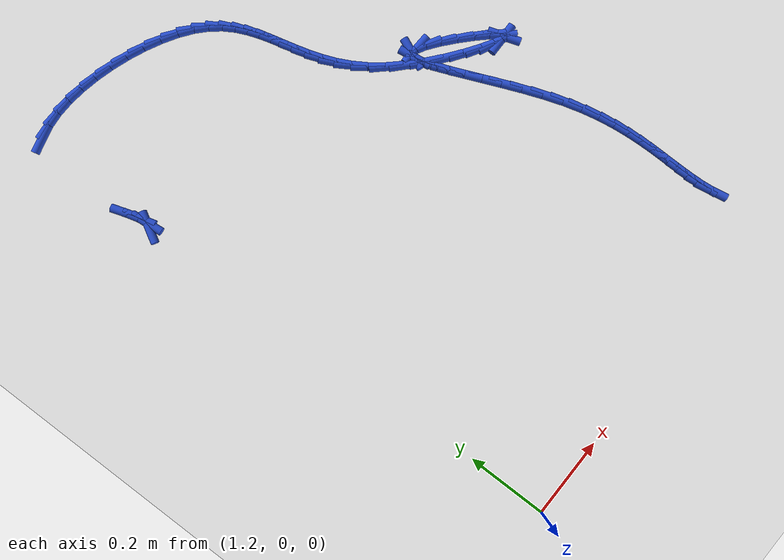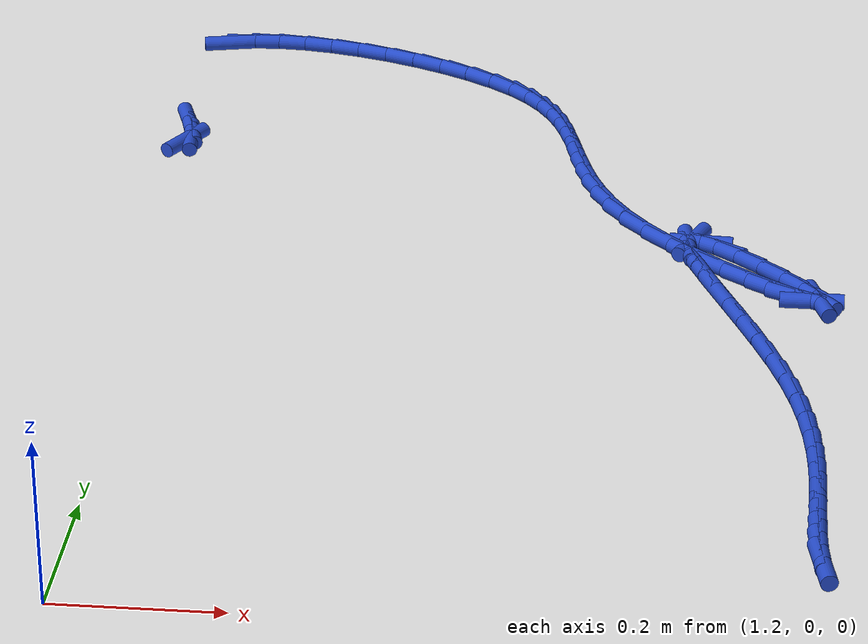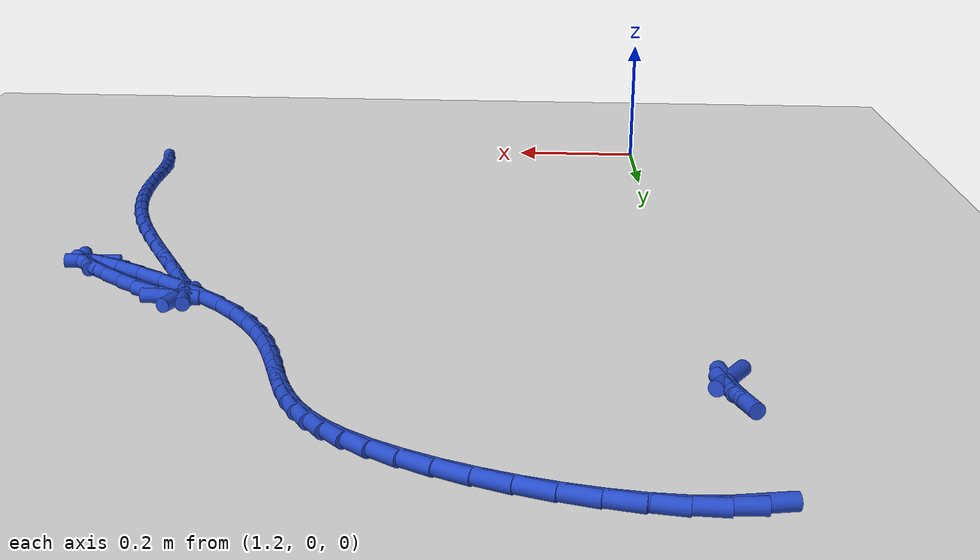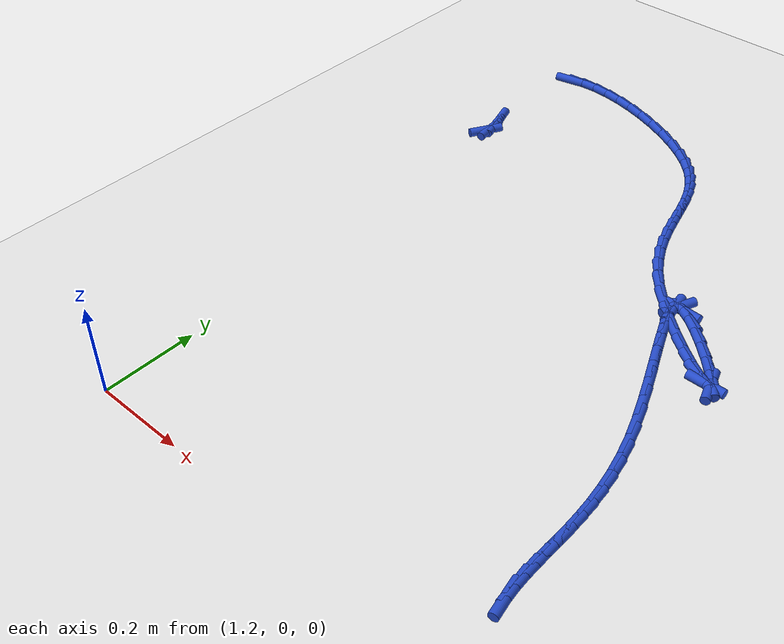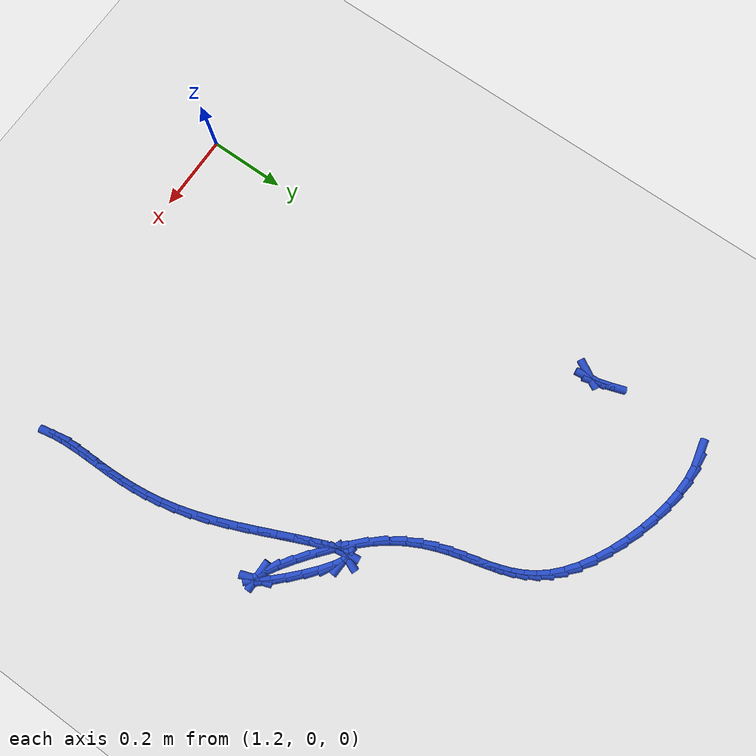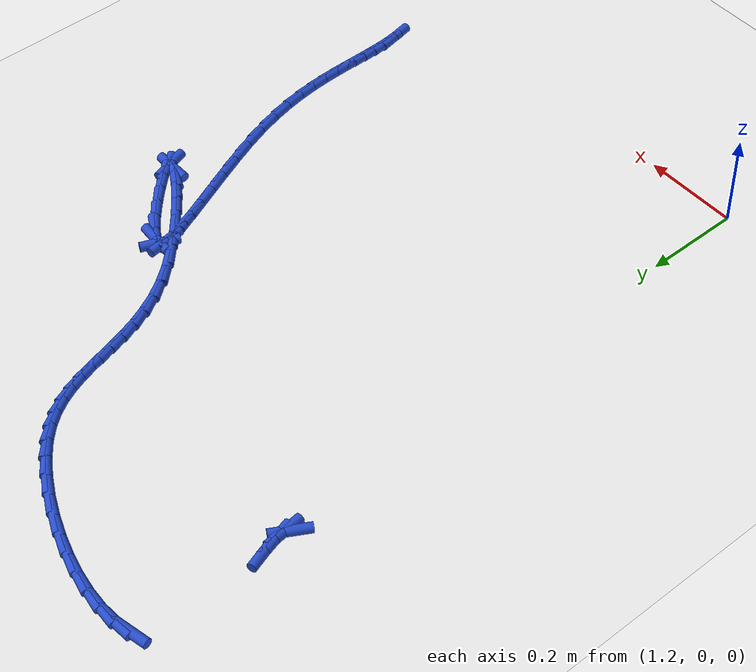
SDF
<sdf version="1.6">
 <world name="default">
  <model name="ground_plane">
   <static>1</static>
   <link name="link">
    <collision name="collision">
     <geometry><plane><normal>0 0 1</normal><size>100 100</size></plane></geometry>
     <surface><friction><ode><mu>100</mu><mu2>50</mu2></ode></friction></surface>
    </collision>
    <visual name="visual">
     <cast_shadows>0</cast_shadows>
     <geometry><plane><normal>0 0 1</normal><size>100 100</size></plane></geometry>
     <material>
      <script><uri>file://media/materials/scripts/gazebo.material</uri><name>Gazebo/WhiteGlow</name></script>
     </material>
    </visual>
   </link>
  </model>
  <model name="line">
   <link name="link_65">
    <pose>1.1656532051447064 1.1157899850554933 0.01 0 1.57 1.0488969806824193</pose>
    <collision name="collision">
     <geometry><cylinder><radius>0.01</radius><length>0.08</length></cylinder></geometry>
    </collision>
    <visual name="visual">
     <material>
      <script><name>Gazebo/Blue</name><uri>file://media/materials/scripts/gazebo.material</uri></script>
     </material>
     <geometry><cylinder><radius>0.01</radius><length>0.08</length></cylinder></geometry>
    </visual>
   </link>
   <link name="link_66">
    <pose>1.171268219180254 1.125553756651792 0.01 0 1.57 -1.4558059415035038</pose>
    <collision name="collision">
     <geometry><cylinder><radius>0.01</radius><length>0.08</length></cylinder></geometry>
    </collision>
    <visual name="visual">
     <material>
      <script><name>Gazebo/Blue</name><uri>file://media/materials/scripts/gazebo.material</uri></script>
     </material>
     <geometry><cylinder><radius>0.01</radius><length>0.08</length></cylinder></geometry>
    </visual>
   </link>
   <link name="link_67">
    <pose>1.1689261494113907 1.1458314325091925 0.01 0 1.57 -1.295163826412042</pose>
    <collision name="collision">
     <geometry><cylinder><radius>0.01</radius><length>0.08</length></cylinder></geometry>
    </collision>
    <visual name="visual">
     <material>
      <script><name>Gazebo/Blue</name><uri>file://media/materials/scripts/gazebo.material</uri></script>
     </material>
     <geometry><cylinder><radius>0.01</radius><length>0.08</length></cylinder></geometry>
    </visual>
   </link>
   <link name="link_68">
    <pose>1.1608627649033894 1.1743409229612525 0.01 0 1.57 -1.248244478907562</pose>
    <collision name="collision">
     <geometry><cylinder><radius>0.01</radius><length>0.08</length></cylinder></geometry>
    </collision>
    <visual name="visual">
     <material>
      <script><name>Gazebo/Blue</name><uri>file://media/materials/scripts/gazebo.material</uri></script>
     </material>
     <geometry><cylinder><radius>0.01</radius><length>0.08</length></cylinder></geometry>
    </visual>
   </link>
   <link name="link_77">
    <pose>1.1797636129354085 1.438411464489104 0.01 0 1.57 0.20988679104183577</pose>
    <collision name="collision">
     <geometry><cylinder><radius>0.01</radius><length>0.08</length></cylinder></geometry>
    </collision>
    <visual name="visual">
     <material>
      <script><name>Gazebo/Blue</name><uri>file://media/materials/scripts/gazebo.material</uri></script>
     </material>
     <geometry><cylinder><radius>0.01</radius><length>0.08</length></cylinder></geometry>
    </visual>
   </link>
   <link name="link_78">
    <pose>1.21087767289421 1.4450395089607755 0.01 0 1.57 0.05666317836701319</pose>
    <collision name="collision">
     <geometry><cylinder><radius>0.01</radius><length>0.08</length></cylinder></geometry>
    </collision>
    <visual name="visual">
     <material>
      <script><name>Gazebo/Blue</name><uri>file://media/materials/scripts/gazebo.material</uri></script>
     </material>
     <geometry><cylinder><radius>0.01</radius><length>0.08</length></cylinder></geometry>
    </visual>
   </link>
   <link name="link_79">
    <pose>1.246080596140976 1.4470363560401402 0.01 0 1.57 -0.059013898095474616</pose>
    <collision name="collision">
     <geometry><cylinder><radius>0.01</radius><length>0.08</length></cylinder></geometry>
    </collision>
    <visual name="visual">
     <material>
      <script><name>Gazebo/Blue</name><uri>file://media/materials/scripts/gazebo.material</uri></script>
     </material>
     <geometry><cylinder><radius>0.01</radius><length>0.08</length></cylinder></geometry>
    </visual>
   </link>
   <link name="link_80">
    <pose>1.2844394759921116 1.4447700174552396 0.01 0 1.57 -0.15067818776980507</pose>
    <collision name="collision">
     <geometry><cylinder><radius>0.01</radius><length>0.08</length></cylinder></geometry>
    </collision>
    <visual name="visual">
     <material>
      <script><name>Gazebo/Blue</name><uri>file://media/materials/scripts/gazebo.material</uri></script>
     </material>
     <geometry><cylinder><radius>0.01</radius><length>0.08</length></cylinder></geometry>
    </visual>
   </link>
   <link name="link_81">
    <pose>1.3250214057640235 1.4386085049341142 0.01 0 1.57 -0.22738578678764337</pose>
    <collision name="collision">
     <geometry><cylinder><radius>0.01</radius><length>0.08</length></cylinder></geometry>
    </collision>
    <visual name="visual">
     <material>
      <script><name>Gazebo/Blue</name><uri>file://media/materials/scripts/gazebo.material</uri></script>
     </material>
     <geometry><cylinder><radius>0.01</radius><length>0.08</length></cylinder></geometry>
    </visual>
   </link>
   <link name="link_82">
    <pose>1.3668934787731175 1.4289198302048054 0.01 0 1.57 -0.29534171705395845</pose>
    <collision name="collision">
     <geometry><cylinder><radius>0.01</radius><length>0.08</length></cylinder></geometry>
    </collision>
    <visual name="visual">
     <material>
      <script><name>Gazebo/Blue</name><uri>file://media/materials/scripts/gazebo.material</uri></script>
     </material>
     <geometry><cylinder><radius>0.01</radius><length>0.08</length></cylinder></geometry>
    </visual>
   </link>
   <link name="link_83">
    <pose>1.409122788335799 1.416072004995355 0.01 0 1.57 -0.3591673425585128</pose>
    <collision name="collision">
     <geometry><cylinder><radius>0.01</radius><length>0.08</length></cylinder></geometry>
    </collision>
    <visual name="visual">
     <material>
      <script><name>Gazebo/Blue</name><uri>file://media/materials/scripts/gazebo.material</uri></script>
     </material>
     <geometry><cylinder><radius>0.01</radius><length>0.08</length></cylinder></geometry>
    </visual>
   </link>
   <link name="link_84">
    <pose>1.4507764277684734 1.4004330410338028 0.01 0 1.57 -0.422787901797771</pose>
    <collision name="collision">
     <geometry><cylinder><radius>0.01</radius><length>0.08</length></cylinder></geometry>
    </collision>
    <visual name="visual">
     <material>
      <script><name>Gazebo/Blue</name><uri>file://media/materials/scripts/gazebo.material</uri></script>
     </material>
     <geometry><cylinder><radius>0.01</radius><length>0.08</length></cylinder></geometry>
    </visual>
   </link>
   <link name="link_85">
    <pose>1.4909214903875467 1.3823709500481913 0.01 0 1.57 -0.4901355269306434</pose>
    <collision name="collision">
     <geometry><cylinder><radius>0.01</radius><length>0.08</length></cylinder></geometry>
    </collision>
    <visual name="visual">
     <material>
      <script><name>Gazebo/Blue</name><uri>file://media/materials/scripts/gazebo.material</uri></script>
     </material>
     <geometry><cylinder><radius>0.01</radius><length>0.08</length></cylinder></geometry>
    </visual>
   </link>
   <link name="link_86">
    <pose>1.5286250695094252 1.362253743766562 0.01 0 1.57 -0.5658675238807724</pose>
    <collision name="collision">
     <geometry><cylinder><radius>0.01</radius><length>0.08</length></cylinder></geometry>
    </collision>
    <visual name="visual">
     <material>
      <script><name>Gazebo/Blue</name><uri>file://media/materials/scripts/gazebo.material</uri></script>
     </material>
     <geometry><cylinder><radius>0.01</radius><length>0.08</length></cylinder></geometry>
    </visual>
   </link>
   <link name="link_87">
    <pose>1.5629542584505138 1.3404494339169546 0.01 0 1.57 -0.6563155612507883</pose>
    <collision name="collision">
     <geometry><cylinder><radius>0.01</radius><length>0.08</length></cylinder></geometry>
    </collision>
    <visual name="visual">
     <material>
      <script><name>Gazebo/Blue</name><uri>file://media/materials/scripts/gazebo.material</uri></script>
     </material>
     <geometry><cylinder><radius>0.01</radius><length>0.08</length></cylinder></geometry>
    </visual>
   </link>
   <link name="link_88">
    <pose>1.5929761505272186 1.3173260322274114 0.01 0 1.57 -0.769297263653076</pose>
    <collision name="collision">
     <geometry><cylinder><radius>0.01</radius><length>0.08</length></cylinder></geometry>
    </collision>
    <visual name="visual">
     <material>
      <script><name>Gazebo/Blue</name><uri>file://media/materials/scripts/gazebo.material</uri></script>
     </material>
     <geometry><cylinder><radius>0.01</radius><length>0.08</length></cylinder></geometry>
    </visual>
   </link>
   <link name="link_89">
    <pose>1.6178594171813907 1.2932314216160885 0.01 0 1.57 -0.8956313855214411</pose>
    <collision name="collision">
     <geometry><cylinder><radius>0.01</radius><length>0.08</length></cylinder></geometry>
    </collision>
    <visual name="visual">
     <material>
      <script><name>Gazebo/Blue</name><uri>file://media/materials/scripts/gazebo.material</uri></script>
     </material>
     <geometry><cylinder><radius>0.01</radius><length>0.08</length></cylinder></geometry>
    </visual>
   </link>
   <link name="link_90">
    <pose>1.6378165850158215 1.2683066337525157 0.01 0 1.57 -1.0185782493417879</pose>
    <collision name="collision">
     <geometry><cylinder><radius>0.01</radius><length>0.08</length></cylinder></geometry>
    </collision>
    <visual name="visual">
     <material>
      <script><name>Gazebo/Blue</name><uri>file://media/materials/scripts/gazebo.material</uri></script>
     </material>
     <geometry><cylinder><radius>0.01</radius><length>0.08</length></cylinder></geometry>
    </visual>
   </link>
   <link name="link_91">
    <pose>1.6536738226688912 1.2425711004655342 0.01 0 1.57 -1.1276453673470754</pose>
    <collision name="collision">
     <geometry><cylinder><radius>0.01</radius><length>0.08</length></cylinder></geometry>
    </collision>
    <visual name="visual">
     <material>
      <script><name>Gazebo/Blue</name><uri>file://media/materials/scripts/gazebo.material</uri></script>
     </material>
     <geometry><cylinder><radius>0.01</radius><length>0.08</length></cylinder></geometry>
    </visual>
   </link>
   <link name="link_92">
    <pose>1.6662651460626112 1.216042698559419 0.01 0 1.57 -1.2145759397727756</pose>
    <collision name="collision">
     <geometry><cylinder><radius>0.01</radius><length>0.08</length></cylinder></geometry>
    </collision>
    <visual name="visual">
     <material>
      <script><name>Gazebo/Blue</name><uri>file://media/materials/scripts/gazebo.material</uri></script>
     </material>
     <geometry><cylinder><radius>0.01</radius><length>0.08</length></cylinder></geometry>
    </visual>
   </link>
   <link name="link_93">
    <pose>1.6764245711189933 1.1887393048384471 0.01 0 1.57 -1.2746580504739031</pose>
    <collision name="collision">
     <geometry><cylinder><radius>0.01</radius><length>0.08</length></cylinder></geometry>
    </collision>
    <visual name="visual">
     <material>
      <script><name>Gazebo/Blue</name><uri>file://media/materials/scripts/gazebo.material</uri></script>
     </material>
     <geometry><cylinder><radius>0.01</radius><length>0.08</length></cylinder></geometry>
    </visual>
   </link>
   <link name="link_94">
    <pose>1.6849861137600481 1.1606787961068947 0.01 0 1.57 -1.30638090434193</pose>
    <collision name="collision">
     <geometry><cylinder><radius>0.01</radius><length>0.08</length></cylinder></geometry>
    </collision>
    <visual name="visual">
     <material>
      <script><name>Gazebo/Blue</name><uri>file://media/materials/scripts/gazebo.material</uri></script>
     </material>
     <geometry><cylinder><radius>0.01</radius><length>0.08</length></cylinder></geometry>
    </visual>
   </link>
   <link name="link_95">
    <pose>1.6927837899077873 1.131879049169038 0.01 0 1.57 -1.3103353042638235</pose>
    <collision name="collision">
     <geometry><cylinder><radius>0.01</radius><length>0.08</length></cylinder></geometry>
    </collision>
    <visual name="visual">
     <material>
      <script><name>Gazebo/Blue</name><uri>file://media/materials/scripts/gazebo.material</uri></script>
     </material>
     <geometry><cylinder><radius>0.01</radius><length>0.08</length></cylinder></geometry>
    </visual>
   </link>
   <link name="link_96">
    <pose>1.7006516154842215 1.1023579408291526 0.01 0 1.57 -1.2883295885083759</pose>
    <collision name="collision">
     <geometry><cylinder><radius>0.01</radius><length>0.08</length></cylinder></geometry>
    </collision>
    <visual name="visual">
     <material>
      <script><name>Gazebo/Blue</name><uri>file://media/materials/scripts/gazebo.material</uri></script>
     </material>
     <geometry><cylinder><radius>0.01</radius><length>0.08</length></cylinder></geometry>
    </visual>
   </link>
   <link name="link_97">
    <pose>1.7094236064113624 1.0721333478915158 0.01 0 1.57 -1.2430374059604155</pose>
    <collision name="collision">
     <geometry><cylinder><radius>0.01</radius><length>0.08</length></cylinder></geometry>
    </collision>
    <visual name="visual">
     <material>
      <script><name>Gazebo/Blue</name><uri>file://media/materials/scripts/gazebo.material</uri></script>
     </material>
     <geometry><cylinder><radius>0.01</radius><length>0.08</length></cylinder></geometry>
    </visual>
   </link>
   <link name="link_98">
    <pose>1.719933778611221 1.0412231471604028 0.01 0 1.57 -1.1780334070711478</pose>
    <collision name="collision">
     <geometry><cylinder><radius>0.01</radius><length>0.08</length></cylinder></geometry>
    </collision>
    <visual name="visual">
     <material>
      <script><name>Gazebo/Blue</name><uri>file://media/materials/scripts/gazebo.material</uri></script>
     </material>
     <geometry><cylinder><radius>0.01</radius><length>0.08</length></cylinder></geometry>
    </visual>
   </link>
   <link name="link_99">
    <pose>1.7330161480058084 1.0096452154400903 0.01 0 1.57 -1.0978910053008004</pose>
    <collision name="collision">
     <geometry><cylinder><radius>0.01</radius><length>0.08</length></cylinder></geometry>
    </collision>
    <visual name="visual">
     <material>
      <script><name>Gazebo/Blue</name><uri>file://media/materials/scripts/gazebo.material</uri></script>
     </material>
     <geometry><cylinder><radius>0.01</radius><length>0.08</length></cylinder></geometry>
    </visual>
   </link>
   <link name="link_100">
    <pose>1.7495047305171356 0.9774174295348544 0.01 0 1.57 -1.0080180907600016</pose>
    <collision name="collision">
     <geometry><cylinder><radius>0.01</radius><length>0.08</length></cylinder></geometry>
    </collision>
    <visual name="visual">
     <material>
      <script><name>Gazebo/Blue</name><uri>file://media/materials/scripts/gazebo.material</uri></script>
     </material>
     <geometry><cylinder><radius>0.01</radius><length>0.08</length></cylinder></geometry>
    </visual>
   </link>
   <link name="link_101">
    <pose>1.7702335420672146 0.9445576662489715 0.01 0 1.57 -0.9140892967896581</pose>
    <collision name="collision">
     <geometry><cylinder><radius>0.01</radius><length>0.08</length></cylinder></geometry>
    </collision>
    <visual name="visual">
     <material>
      <script><name>Gazebo/Blue</name><uri>file://media/materials/scripts/gazebo.material</uri></script>
     </material>
     <geometry><cylinder><radius>0.01</radius><length>0.08</length></cylinder></geometry>
    </visual>
   </link>
   <link name="link_102">
    <pose>1.796036598578056 0.9110838023867185 0.01 0 1.57 -0.8260241469524479</pose>
    <collision name="collision">
     <geometry><cylinder><radius>0.01</radius><length>0.08</length></cylinder></geometry>
    </collision>
    <visual name="visual">
     <material>
      <script><name>Gazebo/Blue</name><uri>file://media/materials/scripts/gazebo.material</uri></script>
     </material>
     <geometry><cylinder><radius>0.01</radius><length>0.08</length></cylinder></geometry>
    </visual>
   </link>
   <link name="link_103">
    <pose>1.8272456750700297 0.877230028444431 0.01 0 1.57 -0.7594569255867708</pose>
    <collision name="collision">
     <geometry><cylinder><radius>0.01</radius><length>0.08</length></cylinder></geometry>
    </collision>
    <visual name="visual">
     <material>
      <script><name>Gazebo/Blue</name><uri>file://media/materials/scripts/gazebo.material</uri></script>
     </material>
     <geometry><cylinder><radius>0.01</radius><length>0.08</length></cylinder></geometry>
    </visual>
   </link>
   <link name="link_104">
    <pose>1.8621133113825188 0.8441260554489193 0.01 0 1.57 -0.7074998256193193</pose>
    <collision name="collision">
     <geometry><cylinder><radius>0.01</radius><length>0.08</length></cylinder></geometry>
    </collision>
    <visual name="visual">
     <material>
      <script><name>Gazebo/Blue</name><uri>file://media/materials/scripts/gazebo.material</uri></script>
     </material>
     <geometry><cylinder><radius>0.01</radius><length>0.08</length></cylinder></geometry>
    </visual>
   </link>
   <link name="link_105">
    <pose>1.8983540604956533 0.8131333037987807 0.01 0 1.57 -0.6617914843509362</pose>
    <collision name="collision">
     <geometry><cylinder><radius>0.01</radius><length>0.08</length></cylinder></geometry>
    </collision>
    <visual name="visual">
     <material>
      <script><name>Gazebo/Blue</name><uri>file://media/materials/scripts/gazebo.material</uri></script>
     </material>
     <geometry><cylinder><radius>0.01</radius><length>0.08</length></cylinder></geometry>
    </visual>
   </link>
   <link name="link_106">
    <pose>1.9336824746071666 0.7856131942295876 0.01 0 1.57 -0.6147792922244116</pose>
    <collision name="collision">
     <geometry><cylinder><radius>0.01</radius><length>0.08</length></cylinder></geometry>
    </collision>
    <visual name="visual">
     <material>
      <script><name>Gazebo/Blue</name><uri>file://media/materials/scripts/gazebo.material</uri></script>
     </material>
     <geometry><cylinder><radius>0.01</radius><length>0.08</length></cylinder></geometry>
    </visual>
   </link>
   <link name="link_107">
    <pose>1.965813105914794 0.7629271474769128 0.01 0 1.57 -0.5541597107554908</pose>
    <collision name="collision">
     <geometry><cylinder><radius>0.01</radius><length>0.08</length></cylinder></geometry>
    </collision>
    <visual name="visual">
     <material>
      <script><name>Gazebo/Blue</name><uri>file://media/materials/scripts/gazebo.material</uri></script>
     </material>
     <geometry><cylinder><radius>0.01</radius><length>0.08</length></cylinder></geometry>
    </visual>
   </link>
   <link name="link_108">
    <pose>1.9924605066162688 0.746436584276329 0.01 0 1.57 -0.441989386261283</pose>
    <collision name="collision">
     <geometry><cylinder><radius>0.01</radius><length>0.08</length></cylinder></geometry>
    </collision>
    <visual name="visual">
     <material>
      <script><name>Gazebo/Blue</name><uri>file://media/materials/scripts/gazebo.material</uri></script>
     </material>
     <geometry><cylinder><radius>0.01</radius><length>0.08</length></cylinder></geometry>
    </visual>
   </link>
   <link name="link_109">
    <pose>2.0113392289093257 0.7375029253634088 0.01 0 1.57 -0.0017376290209448113</pose>
    <collision name="collision">
     <geometry><cylinder><radius>0.01</radius><length>0.08</length></cylinder></geometry>
    </collision>
    <visual name="visual">
     <material>
      <script><name>Gazebo/Blue</name><uri>file://media/materials/scripts/gazebo.material</uri></script>
     </material>
     <geometry><cylinder><radius>0.01</radius><length>0.08</length></cylinder></geometry>
    </visual>
   </link>
   <link name="link_110">
    <pose>2.020163824991698 0.7374875914737251 0.01 0 1.57 -1.2441577855204566</pose>
    <collision name="collision">
     <geometry><cylinder><radius>0.01</radius><length>0.08</length></cylinder></geometry>
    </collision>
    <visual name="visual">
     <material>
      <script><name>Gazebo/Blue</name><uri>file://media/materials/scripts/gazebo.material</uri></script>
     </material>
     <geometry><cylinder><radius>0.01</radius><length>0.08</length></cylinder></geometry>
    </visual>
   </link>
   <link name="link_111">
    <pose>2.0167016396433075 0.7477073607792524 0.01 0 1.57 -0.9027131858742925</pose>
    <collision name="collision">
     <geometry><cylinder><radius>0.01</radius><length>0.08</length></cylinder></geometry>
    </collision>
    <visual name="visual">
     <material>
      <script><name>Gazebo/Blue</name><uri>file://media/materials/scripts/gazebo.material</uri></script>
     </material>
     <geometry><cylinder><radius>0.01</radius><length>0.08</length></cylinder></geometry>
    </visual>
   </link>
   <link name="link_112">
    <pose>2.001126982673954 0.7674436291127386 0.01 0 1.57 -0.8162379286473455</pose>
    <collision name="collision">
     <geometry><cylinder><radius>0.01</radius><length>0.08</length></cylinder></geometry>
    </collision>
    <visual name="visual">
     <material>
      <script><name>Gazebo/Blue</name><uri>file://media/materials/scripts/gazebo.material</uri></script>
     </material>
     <geometry><cylinder><radius>0.01</radius><length>0.08</length></cylinder></geometry>
    </visual>
   </link>
   <link name="link_113">
    <pose>1.9769631005494392 0.7931458581324845 0.01 0 1.57 -0.7665224127068485</pose>
    <collision name="collision">
     <geometry><cylinder><radius>0.01</radius><length>0.08</length></cylinder></geometry>
    </collision>
    <visual name="visual">
     <material>
      <script><name>Gazebo/Blue</name><uri>file://media/materials/scripts/gazebo.material</uri></script>
     </material>
     <geometry><cylinder><radius>0.01</radius><length>0.08</length></cylinder></geometry>
    </visual>
   </link>
   <link name="link_114">
    <pose>1.9479808924396727 0.8210540889468676 0.01 0 1.57 -0.7203056759313524</pose>
    <collision name="collision">
     <geometry><cylinder><radius>0.01</radius><length>0.08</length></cylinder></geometry>
    </collision>
    <visual name="visual">
     <material>
      <script><name>Gazebo/Blue</name><uri>file://media/materials/scripts/gazebo.material</uri></script>
     </material>
     <geometry><cylinder><radius>0.01</radius><length>0.08</length></cylinder></geometry>
    </visual>
   </link>
   <link name="link_115">
    <pose>1.9179512575145659 0.8474083626642638 0.01 0 1.57 -0.6565145827713553</pose>
    <collision name="collision">
     <geometry><cylinder><radius>0.01</radius><length>0.08</length></cylinder></geometry>
    </collision>
    <visual name="visual">
     <material>
      <script><name>Gazebo/Blue</name><uri>file://media/materials/scripts/gazebo.material</uri></script>
     </material>
     <geometry><cylinder><radius>0.01</radius><length>0.08</length></cylinder></geometry>
    </visual>
   </link>
   <link name="link_116">
    <pose>1.8906450949440308 0.8684487203930501 0.01 0 1.57 -0.5219744332875104</pose>
    <collision name="collision">
     <geometry><cylinder><radius>0.01</radius><length>0.08</length></cylinder></geometry>
    </collision>
    <visual name="visual">
     <material>
      <script><name>Gazebo/Blue</name><uri>file://media/materials/scripts/gazebo.material</uri></script>
     </material>
     <geometry><cylinder><radius>0.01</radius><length>0.08</length></cylinder></geometry>
    </visual>
   </link>
   <link name="link_117">
    <pose>1.8698240381484155 0.880424711318093 0.01 0 1.57 -0.05567179766133367</pose>
    <collision name="collision">
     <geometry><cylinder><radius>0.01</radius><length>0.08</length></cylinder></geometry>
    </collision>
    <visual name="visual">
     <material>
      <script><name>Gazebo/Blue</name><uri>file://media/materials/scripts/gazebo.material</uri></script>
     </material>
     <geometry><cylinder><radius>0.01</radius><length>0.08</length></cylinder></geometry>
    </visual>
   </link>
   <link name="link_118">
    <pose>1.8577780674294035 0.8810960258519632 0.01 0 1.57 1.1761378063116914</pose>
    <collision name="collision">
     <geometry><cylinder><radius>0.01</radius><length>0.08</length></cylinder></geometry>
    </collision>
    <visual name="visual">
     <material>
      <script><name>Gazebo/Blue</name><uri>file://media/materials/scripts/gazebo.material</uri></script>
     </material>
     <geometry><cylinder><radius>0.01</radius><length>0.08</length></cylinder></geometry>
    </visual>
   </link>
   <link name="link_119">
    <pose>1.8537278694916286 0.871371919166781 0.01 0 1.57 -1.423995565477846</pose>
    <collision name="collision">
     <geometry><cylinder><radius>0.01</radius><length>0.08</length></cylinder></geometry>
    </collision>
    <visual name="visual">
     <material>
      <script><name>Gazebo/Blue</name><uri>file://media/materials/scripts/gazebo.material</uri></script>
     </material>
     <geometry><cylinder><radius>0.01</radius><length>0.08</length></cylinder></geometry>
    </visual>
   </link>
   <link name="link_120">
    <pose>1.8565101197056582 0.8525557008080255 0.01 0 1.57 -1.2632166805216571</pose>
    <collision name="collision">
     <geometry><cylinder><radius>0.01</radius><length>0.08</length></cylinder></geometry>
    </collision>
    <visual name="visual">
     <material>
      <script><name>Gazebo/Blue</name><uri>file://media/materials/scripts/gazebo.material</uri></script>
     </material>
     <geometry><cylinder><radius>0.01</radius><length>0.08</length></cylinder></geometry>
    </visual>
   </link>
   <link name="link_121">
    <pose>1.8649614934420617 0.8259506803211759 0.01 0 1.57 -1.1975803337421216</pose>
    <collision name="collision">
     <geometry><cylinder><radius>0.01</radius><length>0.08</length></cylinder></geometry>
    </collision>
    <visual name="visual">
     <material>
      <script><name>Gazebo/Blue</name><uri>file://media/materials/scripts/gazebo.material</uri></script>
     </material>
     <geometry><cylinder><radius>0.01</radius><length>0.08</length></cylinder></geometry>
    </visual>
   </link>
   <link name="link_122">
    <pose>1.8779186660714076 0.792860167251711 0.01 0 1.57 -1.1681789756618834</pose>
    <collision name="collision">
     <geometry><cylinder><radius>0.01</radius><length>0.08</length></cylinder></geometry>
    </collision>
    <visual name="visual">
     <material>
      <script><name>Gazebo/Blue</name><uri>file://media/materials/scripts/gazebo.material</uri></script>
     </material>
     <geometry><cylinder><radius>0.01</radius><length>0.08</length></cylinder></geometry>
    </visual>
   </link>
   <link name="link_123">
    <pose>1.8942183129642642 0.754587471145111 0.01 0 1.57 -1.1576397113660373</pose>
    <collision name="collision">
     <geometry><cylinder><radius>0.01</radius><length>0.08</length></cylinder></geometry>
    </collision>
    <visual name="visual">
     <material>
      <script><name>Gazebo/Blue</name><uri>file://media/materials/scripts/gazebo.material</uri></script>
     </material>
     <geometry><cylinder><radius>0.01</radius><length>0.08</length></cylinder></geometry>
    </visual>
   </link>
   <link name="link_124">
    <pose>1.9126971094912009 0.7124359015468535 0.01 0 1.57 -1.1597659983377626</pose>
    <collision name="collision">
     <geometry><cylinder><radius>0.01</radius><length>0.08</length></cylinder></geometry>
    </collision>
    <visual name="visual">
     <material>
      <script><name>Gazebo/Blue</name><uri>file://media/materials/scripts/gazebo.material</uri></script>
     </material>
     <geometry><cylinder><radius>0.01</radius><length>0.08</length></cylinder></geometry>
    </visual>
   </link>
   <link name="link_125">
    <pose>1.9321917310227845 0.6677087680024181 0.01 0 1.57 -1.1726624899722848</pose>
    <collision name="collision">
     <geometry><cylinder><radius>0.01</radius><length>0.08</length></cylinder></geometry>
    </collision>
    <visual name="visual">
     <material>
      <script><name>Gazebo/Blue</name><uri>file://media/materials/scripts/gazebo.material</uri></script>
     </material>
     <geometry><cylinder><radius>0.01</radius><length>0.08</length></cylinder></geometry>
    </visual>
   </link>
   <link name="link_126">
    <pose>1.951538852929585 0.6217093800572837 0.01 0 1.57 -1.1968903924481342</pose>
    <collision name="collision">
     <geometry><cylinder><radius>0.01</radius><length>0.08</length></cylinder></geometry>
    </collision>
    <visual name="visual">
     <material>
      <script><name>Gazebo/Blue</name><uri>file://media/materials/scripts/gazebo.material</uri></script>
     </material>
     <geometry><cylinder><radius>0.01</radius><length>0.08</length></cylinder></geometry>
    </visual>
   </link>
   <link name="link_127">
    <pose>1.9695751505821704 0.5757410472569294 0.01 0 1.57 -1.235312915368636</pose>
    <collision name="collision">
     <geometry><cylinder><radius>0.01</radius><length>0.08</length></cylinder></geometry>
    </collision>
    <visual name="visual">
     <material>
      <script><name>Gazebo/Blue</name><uri>file://media/materials/scripts/gazebo.material</uri></script>
     </material>
     <geometry><cylinder><radius>0.01</radius><length>0.08</length></cylinder></geometry>
    </visual>
   </link>
   <link name="link_128">
    <pose>1.9851374072621149 0.5311069802865169 0.01 0 1.57 -1.2887657635504146</pose>
    <collision name="collision">
     <geometry><cylinder><radius>0.01</radius><length>0.08</length></cylinder></geometry>
    </collision>
    <visual name="visual">
     <material>
      <script><name>Gazebo/Blue</name><uri>file://media/materials/scripts/gazebo.material</uri></script>
     </material>
     <geometry><cylinder><radius>0.01</radius><length>0.08</length></cylinder></geometry>
    </visual>
   </link>
   <link name="link_129">
    <pose>1.9973941535931874 0.4888064667284844 0.01 0 1.57 -1.3447868581407347</pose>
    <collision name="collision">
     <geometry><cylinder><radius>0.01</radius><length>0.08</length></cylinder></geometry>
    </collision>
    <visual name="visual">
     <material>
      <script><name>Gazebo/Blue</name><uri>file://media/materials/scripts/gazebo.material</uri></script>
     </material>
     <geometry><cylinder><radius>0.01</radius><length>0.08</length></cylinder></geometry>
    </visual>
   </link>
   <link name="link_130">
    <pose>2.0065785728141785 0.44886343585813615 0.01 0 1.57 -1.3988111090658673</pose>
    <collision name="collision">
     <geometry><cylinder><radius>0.01</radius><length>0.08</length></cylinder></geometry>
    </collision>
    <visual name="visual">
     <material>
      <script><name>Gazebo/Blue</name><uri>file://media/materials/scripts/gazebo.material</uri></script>
     </material>
     <geometry><cylinder><radius>0.01</radius><length>0.08</length></cylinder></geometry>
    </visual>
   </link>
   <link name="link_131">
    <pose>2.013136990301464 0.41110655142325697 0.01 0 1.57 -1.4488943331659452</pose>
    <collision name="collision">
     <geometry><cylinder><radius>0.01</radius><length>0.08</length></cylinder></geometry>
    </collision>
    <visual name="visual">
     <material>
      <script><name>Gazebo/Blue</name><uri>file://media/materials/scripts/gazebo.material</uri></script>
     </material>
     <geometry><cylinder><radius>0.01</radius><length>0.08</length></cylinder></geometry>
    </visual>
   </link>
   <link name="link_132">
    <pose>2.017515731431425 0.37536447717163224 0.01 0 1.57 -1.4929158380342955</pose>
    <collision name="collision">
     <geometry><cylinder><radius>0.01</radius><length>0.08</length></cylinder></geometry>
    </collision>
    <visual name="visual">
     <material>
      <script><name>Gazebo/Blue</name><uri>file://media/materials/scripts/gazebo.material</uri></script>
     </material>
     <geometry><cylinder><radius>0.01</radius><length>0.08</length></cylinder></geometry>
    </visual>
   </link>
   <link name="link_133">
    <pose>2.020161121580437 0.341465876851047 0.01 0 1.57 -1.5286706687711158</pose>
    <collision name="collision">
     <geometry><cylinder><radius>0.01</radius><length>0.08</length></cylinder></geometry>
    </collision>
    <visual name="visual">
     <material>
      <script><name>Gazebo/Blue</name><uri>file://media/materials/scripts/gazebo.material</uri></script>
     </material>
     <geometry><cylinder><radius>0.01</radius><length>0.08</length></cylinder></geometry>
    </visual>
   </link>
   <link name="link_134">
    <pose>2.0215194861248795 0.30923941420928674 0.01 0 1.57 -1.5539499734903874</pose>
    <collision name="collision">
     <geometry><cylinder><radius>0.01</radius><length>0.08</length></cylinder></geometry>
    </collision>
    <visual name="visual">
     <material>
      <script><name>Gazebo/Blue</name><uri>file://media/materials/scripts/gazebo.material</uri></script>
     </material>
     <geometry><cylinder><radius>0.01</radius><length>0.08</length></cylinder></geometry>
    </visual>
   </link>
   <link name="link_135">
    <pose>2.02203715044113 0.27851375299413555 0.01 0 1.57 -1.5666022895331344</pose>
    <collision name="collision">
     <geometry><cylinder><radius>0.01</radius><length>0.08</length></cylinder></geometry>
    </collision>
    <visual name="visual">
     <material>
      <script><name>Gazebo/Blue</name><uri>file://media/materials/scripts/gazebo.material</uri></script>
     </material>
     <geometry><cylinder><radius>0.01</radius><length>0.08</length></cylinder></geometry>
    </visual>
   </link>
   <link name="link_136">
    <pose>2.022160439905565 0.24911755695337853 0.01 0 1.57 -1.5645905996571283</pose>
    <collision name="collision">
     <geometry><cylinder><radius>0.01</radius><length>0.08</length></cylinder></geometry>
    </collision>
    <visual name="visual">
     <material>
      <script><name>Gazebo/Blue</name><uri>file://media/materials/scripts/gazebo.material</uri></script>
     </material>
     <geometry><cylinder><radius>0.01</radius><length>0.08</length></cylinder></geometry>
    </visual>
   </link>
   <link name="link_137">
    <pose>2.022335679894565 0.22087948983480218 0.01 0 1.57 -1.5460863336405604</pose>
    <collision name="collision">
     <geometry><cylinder><radius>0.01</radius><length>0.08</length></cylinder></geometry>
    </collision>
    <visual name="visual">
     <material>
      <script><name>Gazebo/Blue</name><uri>file://media/materials/scripts/gazebo.material</uri></script>
     </material>
     <geometry><cylinder><radius>0.01</radius><length>0.08</length></cylinder></geometry>
    </visual>
   </link>
   <link name="link_138">
    <pose>2.023009195784506 0.1936282153861897 0.01 0 1.57 -1.5096633254698164</pose>
    <collision name="collision">
     <geometry><cylinder><radius>0.01</radius><length>0.08</length></cylinder></geometry>
    </collision>
    <visual name="visual">
     <material>
      <script><name>Gazebo/Blue</name><uri>file://media/materials/scripts/gazebo.material</uri></script>
     </material>
     <geometry><cylinder><radius>0.01</radius><length>0.08</length></cylinder></geometry>
    </visual>
   </link>
   <link name="link_139">
    <pose>2.024627312951767 0.167192397355328 0.01 0 1.57 -1.4546542254684653</pose>
    <collision name="collision">
     <geometry><cylinder><radius>0.01</radius><length>0.08</length></cylinder></geometry>
    </collision>
    <visual name="visual">
     <material>
      <script><name>Gazebo/Blue</name><uri>file://media/materials/scripts/gazebo.material</uri></script>
     </material>
     <geometry><cylinder><radius>0.01</radius><length>0.08</length></cylinder></geometry>
    </visual>
   </link>
   <link name="link_140">
    <pose>2.0276363567727245 0.14140069949000122 0.01 0 1.57 -1.3821723267220125</pose>
    <collision name="collision">
     <geometry><cylinder><radius>0.01</radius><length>0.08</length></cylinder></geometry>
    </collision>
    <visual name="visual">
     <material>
      <script><name>Gazebo/Blue</name><uri>file://media/materials/scripts/gazebo.material</uri></script>
     </material>
     <geometry><cylinder><radius>0.01</radius><length>0.08</length></cylinder></geometry>
    </visual>
   </link>
  </model>
 </world>
</sdf>
